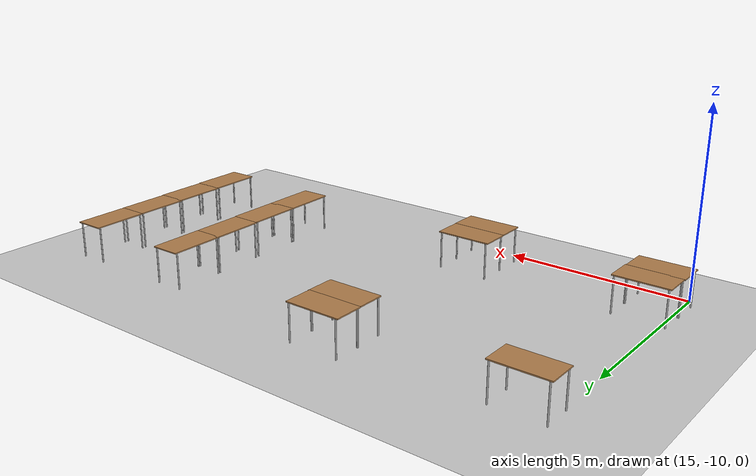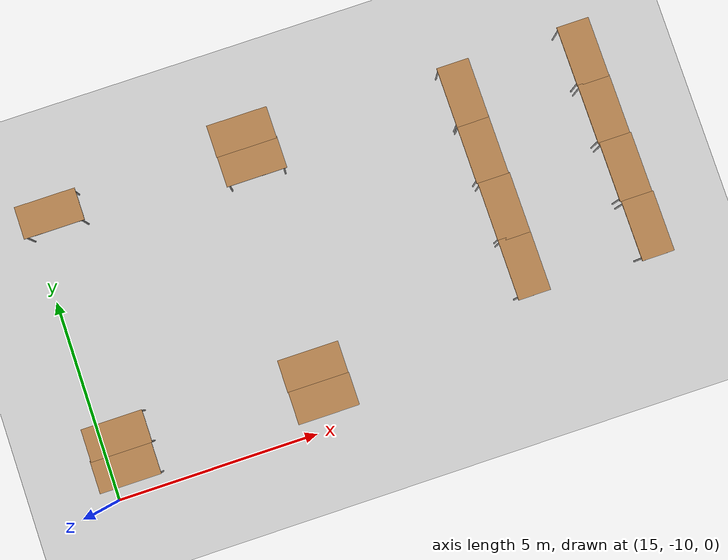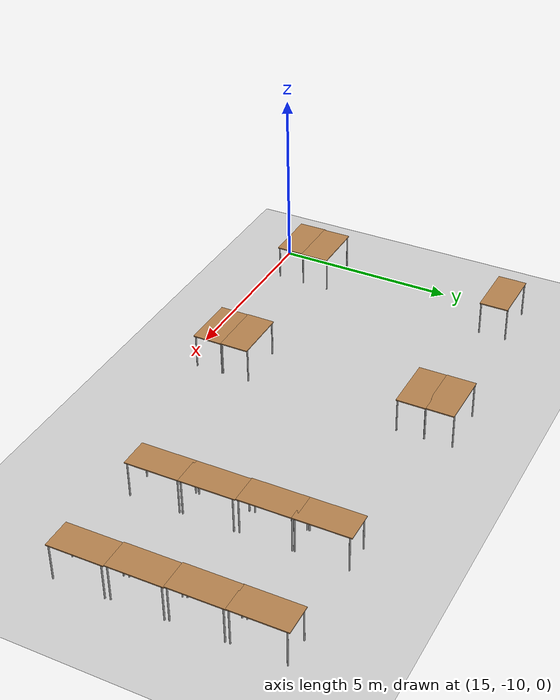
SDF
<sdf version="1.7">
 <world name="default">
  <model name="ground_plane">
   <static>1</static>
   <link name="link">
    <collision name="collision">
     <geometry><plane><normal>0 0 1</normal><size>100 100</size></plane></geometry>
     <surface><friction><ode><mu>100</mu><mu2>50</mu2></ode></friction></surface>
    </collision>
    <visual name="visual">
     <cast_shadows>0</cast_shadows>
     <geometry><plane><normal>0 0 1</normal><size>100 100</size></plane></geometry>
     <material>
      <script><uri>file://media/materials/scripts/gazebo.material</uri><name>Gazebo/Grey</name></script>
     </material>
    </visual>
   </link>
  </model>
  <model name="table">
   <static>1</static>
   <link name="link">
    <collision name="surface">
     <pose>0 0 1 0 -0 0</pose>
     <geometry><box><size>1.5 0.8 0.03</size></box></geometry>
     <surface><friction><ode><mu>0.6</mu><mu2>0.6</mu2></ode></friction></surface>
    </collision>
    <visual name="visual1">
     <pose>0 0 1 0 -0 0</pose>
     <geometry><box><size>1.5 0.8 0.03</size></box></geometry>
     <material>
      <script><uri>file://media/materials/scripts/gazebo.material</uri><name>Gazebo/Wood</name></script>
     </material>
    </visual>
    <collision name="front_left_leg">
     <pose>0.68 0.38 0.5 0 -0 0</pose>
     <geometry><cylinder><radius>0.02</radius><length>1</length></cylinder></geometry>
    </collision>
    <visual name="front_left_leg">
     <pose>0.68 0.38 0.5 0 -0 0</pose>
     <geometry><cylinder><radius>0.02</radius><length>1</length></cylinder></geometry>
     <material>
      <script><uri>file://media/materials/scripts/gazebo.material</uri><name>Gazebo/Grey</name></script>
     </material>
    </visual>
    <collision name="front_right_leg">
     <pose>0.68 -0.38 0.5 0 -0 0</pose>
     <geometry><cylinder><radius>0.02</radius><length>1</length></cylinder></geometry>
    </collision>
    <visual name="front_right_leg">
     <pose>0.68 -0.38 0.5 0 -0 0</pose>
     <geometry><cylinder><radius>0.02</radius><length>1</length></cylinder></geometry>
     <material>
      <script><uri>file://media/materials/scripts/gazebo.material</uri><name>Gazebo/Grey</name></script>
     </material>
    </visual>
    <collision name="back_right_leg">
     <pose>-0.68 -0.38 0.5 0 -0 0</pose>
     <geometry><cylinder><radius>0.02</radius><length>1</length></cylinder></geometry>
    </collision>
    <visual name="back_right_leg">
     <pose>-0.68 -0.38 0.5 0 -0 0</pose>
     <geometry><cylinder><radius>0.02</radius><length>1</length></cylinder></geometry>
     <material>
      <script><uri>file://media/materials/scripts/gazebo.material</uri><name>Gazebo/Grey</name></script>
     </material>
    </visual>
    <collision name="back_left_leg">
     <pose>-0.68 0.38 0.5 0 -0 0</pose>
     <geometry><cylinder><radius>0.02</radius><length>1</length></cylinder></geometry>
    </collision>
    <visual name="back_left_leg">
     <pose>-0.68 0.38 0.5 0 -0 0</pose>
     <geometry><cylinder><radius>0.02</radius><length>1</length></cylinder></geometry>
     <material>
      <script><uri>file://media/materials/scripts/gazebo.material</uri><name>Gazebo/Grey</name></script>
     </material>
    </visual>
   </link>
   <pose>28.9002 -3.35359 0 0 0 -1.56386</pose>
  </model>
  <model name="table_clone">
   <static>1</static>
   <link name="link">
    <collision name="surface">
     <pose>0 0 1 0 -0 0</pose>
     <geometry><box><size>1.5 0.8 0.03</size></box></geometry>
     <surface><friction><ode><mu>0.6</mu><mu2>0.6</mu2></ode></friction></surface>
    </collision>
    <visual name="visual1">
     <pose>0 0 1 0 -0 0</pose>
     <geometry><box><size>1.5 0.8 0.03</size></box></geometry>
     <material>
      <script><uri>file://media/materials/scripts/gazebo.material</uri><name>Gazebo/Wood</name></script>
     </material>
    </visual>
    <collision name="front_left_leg">
     <pose>0.68 0.38 0.5 0 -0 0</pose>
     <geometry><cylinder><radius>0.02</radius><length>1</length></cylinder></geometry>
    </collision>
    <visual name="front_left_leg">
     <pose>0.68 0.38 0.5 0 -0 0</pose>
     <geometry><cylinder><radius>0.02</radius><length>1</length></cylinder></geometry>
     <material>
      <script><uri>file://media/materials/scripts/gazebo.material</uri><name>Gazebo/Grey</name></script>
     </material>
    </visual>
    <collision name="front_right_leg">
     <pose>0.68 -0.38 0.5 0 -0 0</pose>
     <geometry><cylinder><radius>0.02</radius><length>1</length></cylinder></geometry>
    </collision>
    <visual name="front_right_leg">
     <pose>0.68 -0.38 0.5 0 -0 0</pose>
     <geometry><cylinder><radius>0.02</radius><length>1</length></cylinder></geometry>
     <material>
      <script><uri>file://media/materials/scripts/gazebo.material</uri><name>Gazebo/Grey</name></script>
     </material>
    </visual>
    <collision name="back_right_leg">
     <pose>-0.68 -0.38 0.5 0 -0 0</pose>
     <geometry><cylinder><radius>0.02</radius><length>1</length></cylinder></geometry>
    </collision>
    <visual name="back_right_leg">
     <pose>-0.68 -0.38 0.5 0 -0 0</pose>
     <geometry><cylinder><radius>0.02</radius><length>1</length></cylinder></geometry>
     <material>
      <script><uri>file://media/materials/scripts/gazebo.material</uri><name>Gazebo/Grey</name></script>
     </material>
    </visual>
    <collision name="back_left_leg">
     <pose>-0.68 0.38 0.5 0 -0 0</pose>
     <geometry><cylinder><radius>0.02</radius><length>1</length></cylinder></geometry>
    </collision>
    <visual name="back_left_leg">
     <pose>-0.68 0.38 0.5 0 -0 0</pose>
     <geometry><cylinder><radius>0.02</radius><length>1</length></cylinder></geometry>
     <material>
      <script><uri>file://media/materials/scripts/gazebo.material</uri><name>Gazebo/Grey</name></script>
     </material>
    </visual>
   </link>
   <pose>28.9188 -4.82907 0 0 0 -1.56386</pose>
  </model>
  <model name="table_clone_0">
   <static>1</static>
   <link name="link">
    <collision name="surface">
     <pose>0 0 1 0 -0 0</pose>
     <geometry><box><size>1.5 0.8 0.03</size></box></geometry>
     <surface><friction><ode><mu>0.6</mu><mu2>0.6</mu2></ode></friction></surface>
    </collision>
    <visual name="visual1">
     <pose>0 0 1 0 -0 0</pose>
     <geometry><box><size>1.5 0.8 0.03</size></box></geometry>
     <material>
      <script><uri>file://media/materials/scripts/gazebo.material</uri><name>Gazebo/Wood</name></script>
     </material>
    </visual>
    <collision name="front_left_leg">
     <pose>0.68 0.38 0.5 0 -0 0</pose>
     <geometry><cylinder><radius>0.02</radius><length>1</length></cylinder></geometry>
    </collision>
    <visual name="front_left_leg">
     <pose>0.68 0.38 0.5 0 -0 0</pose>
     <geometry><cylinder><radius>0.02</radius><length>1</length></cylinder></geometry>
     <material>
      <script><uri>file://media/materials/scripts/gazebo.material</uri><name>Gazebo/Grey</name></script>
     </material>
    </visual>
    <collision name="front_right_leg">
     <pose>0.68 -0.38 0.5 0 -0 0</pose>
     <geometry><cylinder><radius>0.02</radius><length>1</length></cylinder></geometry>
    </collision>
    <visual name="front_right_leg">
     <pose>0.68 -0.38 0.5 0 -0 0</pose>
     <geometry><cylinder><radius>0.02</radius><length>1</length></cylinder></geometry>
     <material>
      <script><uri>file://media/materials/scripts/gazebo.material</uri><name>Gazebo/Grey</name></script>
     </material>
    </visual>
    <collision name="back_right_leg">
     <pose>-0.68 -0.38 0.5 0 -0 0</pose>
     <geometry><cylinder><radius>0.02</radius><length>1</length></cylinder></geometry>
    </collision>
    <visual name="back_right_leg">
     <pose>-0.68 -0.38 0.5 0 -0 0</pose>
     <geometry><cylinder><radius>0.02</radius><length>1</length></cylinder></geometry>
     <material>
      <script><uri>file://media/materials/scripts/gazebo.material</uri><name>Gazebo/Grey</name></script>
     </material>
    </visual>
    <collision name="back_left_leg">
     <pose>-0.68 0.38 0.5 0 -0 0</pose>
     <geometry><cylinder><radius>0.02</radius><length>1</length></cylinder></geometry>
    </collision>
    <visual name="back_left_leg">
     <pose>-0.68 0.38 0.5 0 -0 0</pose>
     <geometry><cylinder><radius>0.02</radius><length>1</length></cylinder></geometry>
     <material>
      <script><uri>file://media/materials/scripts/gazebo.material</uri><name>Gazebo/Grey</name></script>
     </material>
    </visual>
   </link>
   <pose>28.9534 -6.29686 0 0 0 -1.56386</pose>
  </model>
  <model name="table_clone_1">
   <static>1</static>
   <link name="link">
    <collision name="surface">
     <pose>0 0 1 0 -0 0</pose>
     <geometry><box><size>1.5 0.8 0.03</size></box></geometry>
     <surface><friction><ode><mu>0.6</mu><mu2>0.6</mu2></ode></friction></surface>
    </collision>
    <visual name="visual1">
     <pose>0 0 1 0 -0 0</pose>
     <geometry><box><size>1.5 0.8 0.03</size></box></geometry>
     <material>
      <script><uri>file://media/materials/scripts/gazebo.material</uri><name>Gazebo/Wood</name></script>
     </material>
    </visual>
    <collision name="front_left_leg">
     <pose>0.68 0.38 0.5 0 -0 0</pose>
     <geometry><cylinder><radius>0.02</radius><length>1</length></cylinder></geometry>
    </collision>
    <visual name="front_left_leg">
     <pose>0.68 0.38 0.5 0 -0 0</pose>
     <geometry><cylinder><radius>0.02</radius><length>1</length></cylinder></geometry>
     <material>
      <script><uri>file://media/materials/scripts/gazebo.material</uri><name>Gazebo/Grey</name></script>
     </material>
    </visual>
    <collision name="front_right_leg">
     <pose>0.68 -0.38 0.5 0 -0 0</pose>
     <geometry><cylinder><radius>0.02</radius><length>1</length></cylinder></geometry>
    </collision>
    <visual name="front_right_leg">
     <pose>0.68 -0.38 0.5 0 -0 0</pose>
     <geometry><cylinder><radius>0.02</radius><length>1</length></cylinder></geometry>
     <material>
      <script><uri>file://media/materials/scripts/gazebo.material</uri><name>Gazebo/Grey</name></script>
     </material>
    </visual>
    <collision name="back_right_leg">
     <pose>-0.68 -0.38 0.5 0 -0 0</pose>
     <geometry><cylinder><radius>0.02</radius><length>1</length></cylinder></geometry>
    </collision>
    <visual name="back_right_leg">
     <pose>-0.68 -0.38 0.5 0 -0 0</pose>
     <geometry><cylinder><radius>0.02</radius><length>1</length></cylinder></geometry>
     <material>
      <script><uri>file://media/materials/scripts/gazebo.material</uri><name>Gazebo/Grey</name></script>
     </material>
    </visual>
    <collision name="back_left_leg">
     <pose>-0.68 0.38 0.5 0 -0 0</pose>
     <geometry><cylinder><radius>0.02</radius><length>1</length></cylinder></geometry>
    </collision>
    <visual name="back_left_leg">
     <pose>-0.68 0.38 0.5 0 -0 0</pose>
     <geometry><cylinder><radius>0.02</radius><length>1</length></cylinder></geometry>
     <material>
      <script><uri>file://media/materials/scripts/gazebo.material</uri><name>Gazebo/Grey</name></script>
     </material>
    </visual>
   </link>
   <pose>28.9886 -7.78775 0 0 0 -1.56386</pose>
  </model>
  <model name="table_clone_2">
   <static>1</static>
   <link name="link">
    <collision name="surface">
     <pose>0 0 1 0 -0 0</pose>
     <geometry><box><size>1.5 0.8 0.03</size></box></geometry>
     <surface><friction><ode><mu>0.6</mu><mu2>0.6</mu2></ode></friction></surface>
    </collision>
    <visual name="visual1">
     <pose>0 0 1 0 -0 0</pose>
     <geometry><box><size>1.5 0.8 0.03</size></box></geometry>
     <material>
      <script><uri>file://media/materials/scripts/gazebo.material</uri><name>Gazebo/Wood</name></script>
     </material>
    </visual>
    <collision name="front_left_leg">
     <pose>0.68 0.38 0.5 0 -0 0</pose>
     <geometry><cylinder><radius>0.02</radius><length>1</length></cylinder></geometry>
    </collision>
    <visual name="front_left_leg">
     <pose>0.68 0.38 0.5 0 -0 0</pose>
     <geometry><cylinder><radius>0.02</radius><length>1</length></cylinder></geometry>
     <material>
      <script><uri>file://media/materials/scripts/gazebo.material</uri><name>Gazebo/Grey</name></script>
     </material>
    </visual>
    <collision name="front_right_leg">
     <pose>0.68 -0.38 0.5 0 -0 0</pose>
     <geometry><cylinder><radius>0.02</radius><length>1</length></cylinder></geometry>
    </collision>
    <visual name="front_right_leg">
     <pose>0.68 -0.38 0.5 0 -0 0</pose>
     <geometry><cylinder><radius>0.02</radius><length>1</length></cylinder></geometry>
     <material>
      <script><uri>file://media/materials/scripts/gazebo.material</uri><name>Gazebo/Grey</name></script>
     </material>
    </visual>
    <collision name="back_right_leg">
     <pose>-0.68 -0.38 0.5 0 -0 0</pose>
     <geometry><cylinder><radius>0.02</radius><length>1</length></cylinder></geometry>
    </collision>
    <visual name="back_right_leg">
     <pose>-0.68 -0.38 0.5 0 -0 0</pose>
     <geometry><cylinder><radius>0.02</radius><length>1</length></cylinder></geometry>
     <material>
      <script><uri>file://media/materials/scripts/gazebo.material</uri><name>Gazebo/Grey</name></script>
     </material>
    </visual>
    <collision name="back_left_leg">
     <pose>-0.68 0.38 0.5 0 -0 0</pose>
     <geometry><cylinder><radius>0.02</radius><length>1</length></cylinder></geometry>
    </collision>
    <visual name="back_left_leg">
     <pose>-0.68 0.38 0.5 0 -0 0</pose>
     <geometry><cylinder><radius>0.02</radius><length>1</length></cylinder></geometry>
     <material>
      <script><uri>file://media/materials/scripts/gazebo.material</uri><name>Gazebo/Grey</name></script>
     </material>
    </visual>
   </link>
   <pose>25.8561 -3.38625 0 0 0 -1.56386</pose>
  </model>
  <model name="table_clone_3">
   <static>1</static>
   <link name="link">
    <collision name="surface">
     <pose>0 0 1 0 -0 0</pose>
     <geometry><box><size>1.5 0.8 0.03</size></box></geometry>
     <surface><friction><ode><mu>0.6</mu><mu2>0.6</mu2></ode></friction></surface>
    </collision>
    <visual name="visual1">
     <pose>0 0 1 0 -0 0</pose>
     <geometry><box><size>1.5 0.8 0.03</size></box></geometry>
     <material>
      <script><uri>file://media/materials/scripts/gazebo.material</uri><name>Gazebo/Wood</name></script>
     </material>
    </visual>
    <collision name="front_left_leg">
     <pose>0.68 0.38 0.5 0 -0 0</pose>
     <geometry><cylinder><radius>0.02</radius><length>1</length></cylinder></geometry>
    </collision>
    <visual name="front_left_leg">
     <pose>0.68 0.38 0.5 0 -0 0</pose>
     <geometry><cylinder><radius>0.02</radius><length>1</length></cylinder></geometry>
     <material>
      <script><uri>file://media/materials/scripts/gazebo.material</uri><name>Gazebo/Grey</name></script>
     </material>
    </visual>
    <collision name="front_right_leg">
     <pose>0.68 -0.38 0.5 0 -0 0</pose>
     <geometry><cylinder><radius>0.02</radius><length>1</length></cylinder></geometry>
    </collision>
    <visual name="front_right_leg">
     <pose>0.68 -0.38 0.5 0 -0 0</pose>
     <geometry><cylinder><radius>0.02</radius><length>1</length></cylinder></geometry>
     <material>
      <script><uri>file://media/materials/scripts/gazebo.material</uri><name>Gazebo/Grey</name></script>
     </material>
    </visual>
    <collision name="back_right_leg">
     <pose>-0.68 -0.38 0.5 0 -0 0</pose>
     <geometry><cylinder><radius>0.02</radius><length>1</length></cylinder></geometry>
    </collision>
    <visual name="back_right_leg">
     <pose>-0.68 -0.38 0.5 0 -0 0</pose>
     <geometry><cylinder><radius>0.02</radius><length>1</length></cylinder></geometry>
     <material>
      <script><uri>file://media/materials/scripts/gazebo.material</uri><name>Gazebo/Grey</name></script>
     </material>
    </visual>
    <collision name="back_left_leg">
     <pose>-0.68 0.38 0.5 0 -0 0</pose>
     <geometry><cylinder><radius>0.02</radius><length>1</length></cylinder></geometry>
    </collision>
    <visual name="back_left_leg">
     <pose>-0.68 0.38 0.5 0 -0 0</pose>
     <geometry><cylinder><radius>0.02</radius><length>1</length></cylinder></geometry>
     <material>
      <script><uri>file://media/materials/scripts/gazebo.material</uri><name>Gazebo/Grey</name></script>
     </material>
    </visual>
   </link>
   <pose>25.8669 -4.80788 0 0 0 -1.56386</pose>
  </model>
  <model name="table_clone_4">
   <static>1</static>
   <link name="link">
    <collision name="surface">
     <pose>0 0 1 0 -0 0</pose>
     <geometry><box><size>1.5 0.8 0.03</size></box></geometry>
     <surface><friction><ode><mu>0.6</mu><mu2>0.6</mu2></ode></friction></surface>
    </collision>
    <visual name="visual1">
     <pose>0 0 1 0 -0 0</pose>
     <geometry><box><size>1.5 0.8 0.03</size></box></geometry>
     <material>
      <script><uri>file://media/materials/scripts/gazebo.material</uri><name>Gazebo/Wood</name></script>
     </material>
    </visual>
    <collision name="front_left_leg">
     <pose>0.68 0.38 0.5 0 -0 0</pose>
     <geometry><cylinder><radius>0.02</radius><length>1</length></cylinder></geometry>
    </collision>
    <visual name="front_left_leg">
     <pose>0.68 0.38 0.5 0 -0 0</pose>
     <geometry><cylinder><radius>0.02</radius><length>1</length></cylinder></geometry>
     <material>
      <script><uri>file://media/materials/scripts/gazebo.material</uri><name>Gazebo/Grey</name></script>
     </material>
    </visual>
    <collision name="front_right_leg">
     <pose>0.68 -0.38 0.5 0 -0 0</pose>
     <geometry><cylinder><radius>0.02</radius><length>1</length></cylinder></geometry>
    </collision>
    <visual name="front_right_leg">
     <pose>0.68 -0.38 0.5 0 -0 0</pose>
     <geometry><cylinder><radius>0.02</radius><length>1</length></cylinder></geometry>
     <material>
      <script><uri>file://media/materials/scripts/gazebo.material</uri><name>Gazebo/Grey</name></script>
     </material>
    </visual>
    <collision name="back_right_leg">
     <pose>-0.68 -0.38 0.5 0 -0 0</pose>
     <geometry><cylinder><radius>0.02</radius><length>1</length></cylinder></geometry>
    </collision>
    <visual name="back_right_leg">
     <pose>-0.68 -0.38 0.5 0 -0 0</pose>
     <geometry><cylinder><radius>0.02</radius><length>1</length></cylinder></geometry>
     <material>
      <script><uri>file://media/materials/scripts/gazebo.material</uri><name>Gazebo/Grey</name></script>
     </material>
    </visual>
    <collision name="back_left_leg">
     <pose>-0.68 0.38 0.5 0 -0 0</pose>
     <geometry><cylinder><radius>0.02</radius><length>1</length></cylinder></geometry>
    </collision>
    <visual name="back_left_leg">
     <pose>-0.68 0.38 0.5 0 -0 0</pose>
     <geometry><cylinder><radius>0.02</radius><length>1</length></cylinder></geometry>
     <material>
      <script><uri>file://media/materials/scripts/gazebo.material</uri><name>Gazebo/Grey</name></script>
     </material>
    </visual>
   </link>
   <pose>25.902 -6.29777 0 0 0 -1.56386</pose>
  </model>
  <model name="table_clone_5">
   <static>1</static>
   <link name="link">
    <collision name="surface">
     <pose>0 0 1 0 -0 0</pose>
     <geometry><box><size>1.5 0.8 0.03</size></box></geometry>
     <surface><friction><ode><mu>0.6</mu><mu2>0.6</mu2></ode></friction></surface>
    </collision>
    <visual name="visual1">
     <pose>0 0 1 0 -0 0</pose>
     <geometry><box><size>1.5 0.8 0.03</size></box></geometry>
     <material>
      <script><uri>file://media/materials/scripts/gazebo.material</uri><name>Gazebo/Wood</name></script>
     </material>
    </visual>
    <collision name="front_left_leg">
     <pose>0.68 0.38 0.5 0 -0 0</pose>
     <geometry><cylinder><radius>0.02</radius><length>1</length></cylinder></geometry>
    </collision>
    <visual name="front_left_leg">
     <pose>0.68 0.38 0.5 0 -0 0</pose>
     <geometry><cylinder><radius>0.02</radius><length>1</length></cylinder></geometry>
     <material>
      <script><uri>file://media/materials/scripts/gazebo.material</uri><name>Gazebo/Grey</name></script>
     </material>
    </visual>
    <collision name="front_right_leg">
     <pose>0.68 -0.38 0.5 0 -0 0</pose>
     <geometry><cylinder><radius>0.02</radius><length>1</length></cylinder></geometry>
    </collision>
    <visual name="front_right_leg">
     <pose>0.68 -0.38 0.5 0 -0 0</pose>
     <geometry><cylinder><radius>0.02</radius><length>1</length></cylinder></geometry>
     <material>
      <script><uri>file://media/materials/scripts/gazebo.material</uri><name>Gazebo/Grey</name></script>
     </material>
    </visual>
    <collision name="back_right_leg">
     <pose>-0.68 -0.38 0.5 0 -0 0</pose>
     <geometry><cylinder><radius>0.02</radius><length>1</length></cylinder></geometry>
    </collision>
    <visual name="back_right_leg">
     <pose>-0.68 -0.38 0.5 0 -0 0</pose>
     <geometry><cylinder><radius>0.02</radius><length>1</length></cylinder></geometry>
     <material>
      <script><uri>file://media/materials/scripts/gazebo.material</uri><name>Gazebo/Grey</name></script>
     </material>
    </visual>
    <collision name="back_left_leg">
     <pose>-0.68 0.38 0.5 0 -0 0</pose>
     <geometry><cylinder><radius>0.02</radius><length>1</length></cylinder></geometry>
    </collision>
    <visual name="back_left_leg">
     <pose>-0.68 0.38 0.5 0 -0 0</pose>
     <geometry><cylinder><radius>0.02</radius><length>1</length></cylinder></geometry>
     <material>
      <script><uri>file://media/materials/scripts/gazebo.material</uri><name>Gazebo/Grey</name></script>
     </material>
    </visual>
   </link>
   <pose>25.9134 -7.74235 0 0 0 -1.56386</pose>
  </model>
  <model name="table_0_clone_1">
   <static>1</static>
   <link name="link">
    <collision name="surface">
     <pose>0 0 1 0 -0 0</pose>
     <geometry><box><size>1.5 0.8 0.03</size></box></geometry>
     <surface><friction><ode><mu>0.6</mu><mu2>0.6</mu2></ode></friction></surface>
    </collision>
    <visual name="visual1">
     <pose>0 0 1 0 -0 0</pose>
     <geometry><box><size>1.5 0.8 0.03</size></box></geometry>
     <material>
      <script><uri>file://media/materials/scripts/gazebo.material</uri><name>Gazebo/Wood</name></script>
     </material>
    </visual>
    <collision name="front_left_leg">
     <pose>0.68 0.38 0.5 0 -0 0</pose>
     <geometry><cylinder><radius>0.02</radius><length>1</length></cylinder></geometry>
    </collision>
    <visual name="front_left_leg">
     <pose>0.68 0.38 0.5 0 -0 0</pose>
     <geometry><cylinder><radius>0.02</radius><length>1</length></cylinder></geometry>
     <material>
      <script><uri>file://media/materials/scripts/gazebo.material</uri><name>Gazebo/Grey</name></script>
     </material>
    </visual>
    <collision name="front_right_leg">
     <pose>0.68 -0.38 0.5 0 -0 0</pose>
     <geometry><cylinder><radius>0.02</radius><length>1</length></cylinder></geometry>
    </collision>
    <visual name="front_right_leg">
     <pose>0.68 -0.38 0.5 0 -0 0</pose>
     <geometry><cylinder><radius>0.02</radius><length>1</length></cylinder></geometry>
     <material>
      <script><uri>file://media/materials/scripts/gazebo.material</uri><name>Gazebo/Grey</name></script>
     </material>
    </visual>
    <collision name="back_right_leg">
     <pose>-0.68 -0.38 0.5 0 -0 0</pose>
     <geometry><cylinder><radius>0.02</radius><length>1</length></cylinder></geometry>
    </collision>
    <visual name="back_right_leg">
     <pose>-0.68 -0.38 0.5 0 -0 0</pose>
     <geometry><cylinder><radius>0.02</radius><length>1</length></cylinder></geometry>
     <material>
      <script><uri>file://media/materials/scripts/gazebo.material</uri><name>Gazebo/Grey</name></script>
     </material>
    </visual>
    <collision name="back_left_leg">
     <pose>-0.68 0.38 0.5 0 -0 0</pose>
     <geometry><cylinder><radius>0.02</radius><length>1</length></cylinder></geometry>
    </collision>
    <visual name="back_left_leg">
     <pose>-0.68 0.38 0.5 0 -0 0</pose>
     <geometry><cylinder><radius>0.02</radius><length>1</length></cylinder></geometry>
     <material>
      <script><uri>file://media/materials/scripts/gazebo.material</uri><name>Gazebo/Grey</name></script>
     </material>
    </visual>
   </link>
   <pose>15.6354 -3.03922 0 0 -0 0</pose>
  </model>
  <model name="table_0_clone_2">
   <static>1</static>
   <link name="link">
    <collision name="surface">
     <pose>0 0 1 0 -0 0</pose>
     <geometry><box><size>1.5 0.8 0.03</size></box></geometry>
     <surface><friction><ode><mu>0.6</mu><mu2>0.6</mu2></ode></friction></surface>
    </collision>
    <visual name="visual1">
     <pose>0 0 1 0 -0 0</pose>
     <geometry><box><size>1.5 0.8 0.03</size></box></geometry>
     <material>
      <script><uri>file://media/materials/scripts/gazebo.material</uri><name>Gazebo/Wood</name></script>
     </material>
    </visual>
    <collision name="front_left_leg">
     <pose>0.68 0.38 0.5 0 -0 0</pose>
     <geometry><cylinder><radius>0.02</radius><length>1</length></cylinder></geometry>
    </collision>
    <visual name="front_left_leg">
     <pose>0.68 0.38 0.5 0 -0 0</pose>
     <geometry><cylinder><radius>0.02</radius><length>1</length></cylinder></geometry>
     <material>
      <script><uri>file://media/materials/scripts/gazebo.material</uri><name>Gazebo/Grey</name></script>
     </material>
    </visual>
    <collision name="front_right_leg">
     <pose>0.68 -0.38 0.5 0 -0 0</pose>
     <geometry><cylinder><radius>0.02</radius><length>1</length></cylinder></geometry>
    </collision>
    <visual name="front_right_leg">
     <pose>0.68 -0.38 0.5 0 -0 0</pose>
     <geometry><cylinder><radius>0.02</radius><length>1</length></cylinder></geometry>
     <material>
      <script><uri>file://media/materials/scripts/gazebo.material</uri><name>Gazebo/Grey</name></script>
     </material>
    </visual>
    <collision name="back_right_leg">
     <pose>-0.68 -0.38 0.5 0 -0 0</pose>
     <geometry><cylinder><radius>0.02</radius><length>1</length></cylinder></geometry>
    </collision>
    <visual name="back_right_leg">
     <pose>-0.68 -0.38 0.5 0 -0 0</pose>
     <geometry><cylinder><radius>0.02</radius><length>1</length></cylinder></geometry>
     <material>
      <script><uri>file://media/materials/scripts/gazebo.material</uri><name>Gazebo/Grey</name></script>
     </material>
    </visual>
    <collision name="back_left_leg">
     <pose>-0.68 0.38 0.5 0 -0 0</pose>
     <geometry><cylinder><radius>0.02</radius><length>1</length></cylinder></geometry>
    </collision>
    <visual name="back_left_leg">
     <pose>-0.68 0.38 0.5 0 -0 0</pose>
     <geometry><cylinder><radius>0.02</radius><length>1</length></cylinder></geometry>
     <material>
      <script><uri>file://media/materials/scripts/gazebo.material</uri><name>Gazebo/Grey</name></script>
     </material>
    </visual>
   </link>
   <pose>15.5532 -8.52508 0 0 -0 0</pose>
  </model>
  <model name="table_0_clone_3">
   <static>1</static>
   <link name="link">
    <collision name="surface">
     <pose>0 0 1 0 -0 0</pose>
     <geometry><box><size>1.5 0.8 0.03</size></box></geometry>
     <surface><friction><ode><mu>0.6</mu><mu2>0.6</mu2></ode></friction></surface>
    </collision>
    <visual name="visual1">
     <pose>0 0 1 0 -0 0</pose>
     <geometry><box><size>1.5 0.8 0.03</size></box></geometry>
     <material>
      <script><uri>file://media/materials/scripts/gazebo.material</uri><name>Gazebo/Wood</name></script>
     </material>
    </visual>
    <collision name="front_left_leg">
     <pose>0.68 0.38 0.5 0 -0 0</pose>
     <geometry><cylinder><radius>0.02</radius><length>1</length></cylinder></geometry>
    </collision>
    <visual name="front_left_leg">
     <pose>0.68 0.38 0.5 0 -0 0</pose>
     <geometry><cylinder><radius>0.02</radius><length>1</length></cylinder></geometry>
     <material>
      <script><uri>file://media/materials/scripts/gazebo.material</uri><name>Gazebo/Grey</name></script>
     </material>
    </visual>
    <collision name="front_right_leg">
     <pose>0.68 -0.38 0.5 0 -0 0</pose>
     <geometry><cylinder><radius>0.02</radius><length>1</length></cylinder></geometry>
    </collision>
    <visual name="front_right_leg">
     <pose>0.68 -0.38 0.5 0 -0 0</pose>
     <geometry><cylinder><radius>0.02</radius><length>1</length></cylinder></geometry>
     <material>
      <script><uri>file://media/materials/scripts/gazebo.material</uri><name>Gazebo/Grey</name></script>
     </material>
    </visual>
    <collision name="back_right_leg">
     <pose>-0.68 -0.38 0.5 0 -0 0</pose>
     <geometry><cylinder><radius>0.02</radius><length>1</length></cylinder></geometry>
    </collision>
    <visual name="back_right_leg">
     <pose>-0.68 -0.38 0.5 0 -0 0</pose>
     <geometry><cylinder><radius>0.02</radius><length>1</length></cylinder></geometry>
     <material>
      <script><uri>file://media/materials/scripts/gazebo.material</uri><name>Gazebo/Grey</name></script>
     </material>
    </visual>
    <collision name="back_left_leg">
     <pose>-0.68 0.38 0.5 0 -0 0</pose>
     <geometry><cylinder><radius>0.02</radius><length>1</length></cylinder></geometry>
    </collision>
    <visual name="back_left_leg">
     <pose>-0.68 0.38 0.5 0 -0 0</pose>
     <geometry><cylinder><radius>0.02</radius><length>1</length></cylinder></geometry>
     <material>
      <script><uri>file://media/materials/scripts/gazebo.material</uri><name>Gazebo/Grey</name></script>
     </material>
    </visual>
   </link>
   <pose>15.5333 -9.29098 0 0 -0 0</pose>
  </model>
  <model name="table_0_clone_4">
   <static>1</static>
   <link name="link">
    <collision name="surface">
     <pose>0 0 1 0 -0 0</pose>
     <geometry><box><size>1.5 0.8 0.03</size></box></geometry>
     <surface><friction><ode><mu>0.6</mu><mu2>0.6</mu2></ode></friction></surface>
    </collision>
    <visual name="visual1">
     <pose>0 0 1 0 -0 0</pose>
     <geometry><box><size>1.5 0.8 0.03</size></box></geometry>
     <material>
      <script><uri>file://media/materials/scripts/gazebo.material</uri><name>Gazebo/Wood</name></script>
     </material>
    </visual>
    <collision name="front_left_leg">
     <pose>0.68 0.38 0.5 0 -0 0</pose>
     <geometry><cylinder><radius>0.02</radius><length>1</length></cylinder></geometry>
    </collision>
    <visual name="front_left_leg">
     <pose>0.68 0.38 0.5 0 -0 0</pose>
     <geometry><cylinder><radius>0.02</radius><length>1</length></cylinder></geometry>
     <material>
      <script><uri>file://media/materials/scripts/gazebo.material</uri><name>Gazebo/Grey</name></script>
     </material>
    </visual>
    <collision name="front_right_leg">
     <pose>0.68 -0.38 0.5 0 -0 0</pose>
     <geometry><cylinder><radius>0.02</radius><length>1</length></cylinder></geometry>
    </collision>
    <visual name="front_right_leg">
     <pose>0.68 -0.38 0.5 0 -0 0</pose>
     <geometry><cylinder><radius>0.02</radius><length>1</length></cylinder></geometry>
     <material>
      <script><uri>file://media/materials/scripts/gazebo.material</uri><name>Gazebo/Grey</name></script>
     </material>
    </visual>
    <collision name="back_right_leg">
     <pose>-0.68 -0.38 0.5 0 -0 0</pose>
     <geometry><cylinder><radius>0.02</radius><length>1</length></cylinder></geometry>
    </collision>
    <visual name="back_right_leg">
     <pose>-0.68 -0.38 0.5 0 -0 0</pose>
     <geometry><cylinder><radius>0.02</radius><length>1</length></cylinder></geometry>
     <material>
      <script><uri>file://media/materials/scripts/gazebo.material</uri><name>Gazebo/Grey</name></script>
     </material>
    </visual>
    <collision name="back_left_leg">
     <pose>-0.68 0.38 0.5 0 -0 0</pose>
     <geometry><cylinder><radius>0.02</radius><length>1</length></cylinder></geometry>
    </collision>
    <visual name="back_left_leg">
     <pose>-0.68 0.38 0.5 0 -0 0</pose>
     <geometry><cylinder><radius>0.02</radius><length>1</length></cylinder></geometry>
     <material>
      <script><uri>file://media/materials/scripts/gazebo.material</uri><name>Gazebo/Grey</name></script>
     </material>
    </visual>
   </link>
   <pose>20.4216 -8.44977 0 0 -0 0</pose>
  </model>
  <model name="table_0_clone_5">
   <static>1</static>
   <link name="link">
    <collision name="surface">
     <pose>0 0 1 0 -0 0</pose>
     <geometry><box><size>1.5 0.8 0.03</size></box></geometry>
     <surface><friction><ode><mu>0.6</mu><mu2>0.6</mu2></ode></friction></surface>
    </collision>
    <visual name="visual1">
     <pose>0 0 1 0 -0 0</pose>
     <geometry><box><size>1.5 0.8 0.03</size></box></geometry>
     <material>
      <script><uri>file://media/materials/scripts/gazebo.material</uri><name>Gazebo/Wood</name></script>
     </material>
    </visual>
    <collision name="front_left_leg">
     <pose>0.68 0.38 0.5 0 -0 0</pose>
     <geometry><cylinder><radius>0.02</radius><length>1</length></cylinder></geometry>
    </collision>
    <visual name="front_left_leg">
     <pose>0.68 0.38 0.5 0 -0 0</pose>
     <geometry><cylinder><radius>0.02</radius><length>1</length></cylinder></geometry>
     <material>
      <script><uri>file://media/materials/scripts/gazebo.material</uri><name>Gazebo/Grey</name></script>
     </material>
    </visual>
    <collision name="front_right_leg">
     <pose>0.68 -0.38 0.5 0 -0 0</pose>
     <geometry><cylinder><radius>0.02</radius><length>1</length></cylinder></geometry>
    </collision>
    <visual name="front_right_leg">
     <pose>0.68 -0.38 0.5 0 -0 0</pose>
     <geometry><cylinder><radius>0.02</radius><length>1</length></cylinder></geometry>
     <material>
      <script><uri>file://media/materials/scripts/gazebo.material</uri><name>Gazebo/Grey</name></script>
     </material>
    </visual>
    <collision name="back_right_leg">
     <pose>-0.68 -0.38 0.5 0 -0 0</pose>
     <geometry><cylinder><radius>0.02</radius><length>1</length></cylinder></geometry>
    </collision>
    <visual name="back_right_leg">
     <pose>-0.68 -0.38 0.5 0 -0 0</pose>
     <geometry><cylinder><radius>0.02</radius><length>1</length></cylinder></geometry>
     <material>
      <script><uri>file://media/materials/scripts/gazebo.material</uri><name>Gazebo/Grey</name></script>
     </material>
    </visual>
    <collision name="back_left_leg">
     <pose>-0.68 0.38 0.5 0 -0 0</pose>
     <geometry><cylinder><radius>0.02</radius><length>1</length></cylinder></geometry>
    </collision>
    <visual name="back_left_leg">
     <pose>-0.68 0.38 0.5 0 -0 0</pose>
     <geometry><cylinder><radius>0.02</radius><length>1</length></cylinder></geometry>
     <material>
      <script><uri>file://media/materials/scripts/gazebo.material</uri><name>Gazebo/Grey</name></script>
     </material>
    </visual>
   </link>
   <pose>20.4339 -9.22987 0 0 -0 0</pose>
  </model>
  <model name="table_0_clone_6">
   <static>1</static>
   <link name="link">
    <collision name="surface">
     <pose>0 0 1 0 -0 0</pose>
     <geometry><box><size>1.5 0.8 0.03</size></box></geometry>
     <surface><friction><ode><mu>0.6</mu><mu2>0.6</mu2></ode></friction></surface>
    </collision>
    <visual name="visual1">
     <pose>0 0 1 0 -0 0</pose>
     <geometry><box><size>1.5 0.8 0.03</size></box></geometry>
     <material>
      <script><uri>file://media/materials/scripts/gazebo.material</uri><name>Gazebo/Wood</name></script>
     </material>
    </visual>
    <collision name="front_left_leg">
     <pose>0.68 0.38 0.5 0 -0 0</pose>
     <geometry><cylinder><radius>0.02</radius><length>1</length></cylinder></geometry>
    </collision>
    <visual name="front_left_leg">
     <pose>0.68 0.38 0.5 0 -0 0</pose>
     <geometry><cylinder><radius>0.02</radius><length>1</length></cylinder></geometry>
     <material>
      <script><uri>file://media/materials/scripts/gazebo.material</uri><name>Gazebo/Grey</name></script>
     </material>
    </visual>
    <collision name="front_right_leg">
     <pose>0.68 -0.38 0.5 0 -0 0</pose>
     <geometry><cylinder><radius>0.02</radius><length>1</length></cylinder></geometry>
    </collision>
    <visual name="front_right_leg">
     <pose>0.68 -0.38 0.5 0 -0 0</pose>
     <geometry><cylinder><radius>0.02</radius><length>1</length></cylinder></geometry>
     <material>
      <script><uri>file://media/materials/scripts/gazebo.material</uri><name>Gazebo/Grey</name></script>
     </material>
    </visual>
    <collision name="back_right_leg">
     <pose>-0.68 -0.38 0.5 0 -0 0</pose>
     <geometry><cylinder><radius>0.02</radius><length>1</length></cylinder></geometry>
    </collision>
    <visual name="back_right_leg">
     <pose>-0.68 -0.38 0.5 0 -0 0</pose>
     <geometry><cylinder><radius>0.02</radius><length>1</length></cylinder></geometry>
     <material>
      <script><uri>file://media/materials/scripts/gazebo.material</uri><name>Gazebo/Grey</name></script>
     </material>
    </visual>
    <collision name="back_left_leg">
     <pose>-0.68 0.38 0.5 0 -0 0</pose>
     <geometry><cylinder><radius>0.02</radius><length>1</length></cylinder></geometry>
    </collision>
    <visual name="back_left_leg">
     <pose>-0.68 0.38 0.5 0 -0 0</pose>
     <geometry><cylinder><radius>0.02</radius><length>1</length></cylinder></geometry>
     <material>
      <script><uri>file://media/materials/scripts/gazebo.material</uri><name>Gazebo/Grey</name></script>
     </material>
    </visual>
   </link>
   <pose>20.56 -2.62101 0 0 -0 0</pose>
  </model>
  <model name="table_0_clone_7">
   <static>1</static>
   <link name="link">
    <collision name="surface">
     <pose>0 0 1 0 -0 0</pose>
     <geometry><box><size>1.5 0.8 0.03</size></box></geometry>
     <surface><friction><ode><mu>0.6</mu><mu2>0.6</mu2></ode></friction></surface>
    </collision>
    <visual name="visual1">
     <pose>0 0 1 0 -0 0</pose>
     <geometry><box><size>1.5 0.8 0.03</size></box></geometry>
     <material>
      <script><uri>file://media/materials/scripts/gazebo.material</uri><name>Gazebo/Wood</name></script>
     </material>
    </visual>
    <collision name="front_left_leg">
     <pose>0.68 0.38 0.5 0 -0 0</pose>
     <geometry><cylinder><radius>0.02</radius><length>1</length></cylinder></geometry>
    </collision>
    <visual name="front_left_leg">
     <pose>0.68 0.38 0.5 0 -0 0</pose>
     <geometry><cylinder><radius>0.02</radius><length>1</length></cylinder></geometry>
     <material>
      <script><uri>file://media/materials/scripts/gazebo.material</uri><name>Gazebo/Grey</name></script>
     </material>
    </visual>
    <collision name="front_right_leg">
     <pose>0.68 -0.38 0.5 0 -0 0</pose>
     <geometry><cylinder><radius>0.02</radius><length>1</length></cylinder></geometry>
    </collision>
    <visual name="front_right_leg">
     <pose>0.68 -0.38 0.5 0 -0 0</pose>
     <geometry><cylinder><radius>0.02</radius><length>1</length></cylinder></geometry>
     <material>
      <script><uri>file://media/materials/scripts/gazebo.material</uri><name>Gazebo/Grey</name></script>
     </material>
    </visual>
    <collision name="back_right_leg">
     <pose>-0.68 -0.38 0.5 0 -0 0</pose>
     <geometry><cylinder><radius>0.02</radius><length>1</length></cylinder></geometry>
    </collision>
    <visual name="back_right_leg">
     <pose>-0.68 -0.38 0.5 0 -0 0</pose>
     <geometry><cylinder><radius>0.02</radius><length>1</length></cylinder></geometry>
     <material>
      <script><uri>file://media/materials/scripts/gazebo.material</uri><name>Gazebo/Grey</name></script>
     </material>
    </visual>
    <collision name="back_left_leg">
     <pose>-0.68 0.38 0.5 0 -0 0</pose>
     <geometry><cylinder><radius>0.02</radius><length>1</length></cylinder></geometry>
    </collision>
    <visual name="back_left_leg">
     <pose>-0.68 0.38 0.5 0 -0 0</pose>
     <geometry><cylinder><radius>0.02</radius><length>1</length></cylinder></geometry>
     <material>
      <script><uri>file://media/materials/scripts/gazebo.material</uri><name>Gazebo/Grey</name></script>
     </material>
    </visual>
   </link>
   <pose>20.5719 -3.36967 0 0 -0 0</pose>
  </model>
 </world>
</sdf>
